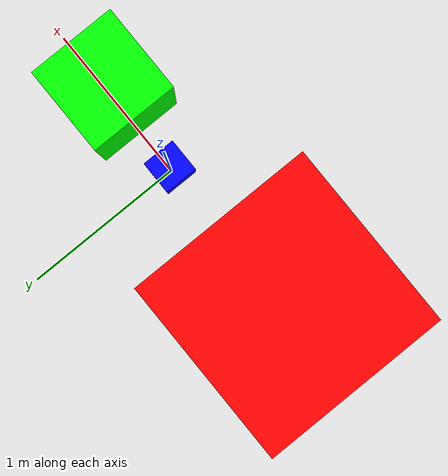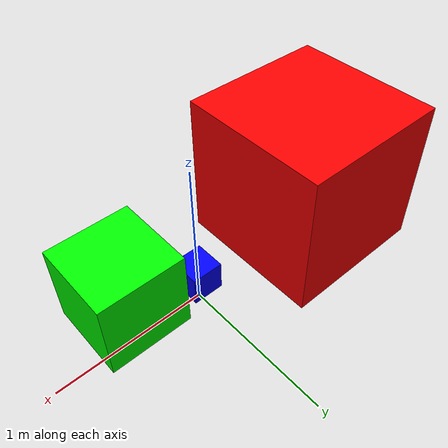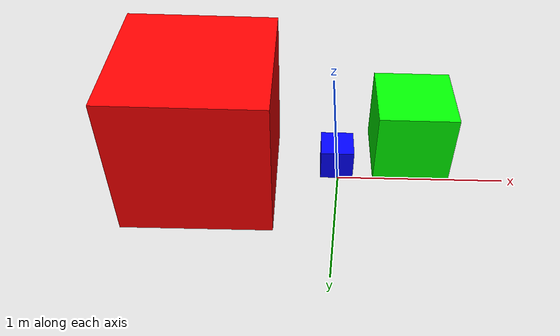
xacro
<?xml version="1.0"?>
<!--
  hello_world.xacro
  A minimal example showing how to use Xacro macros and parameters
  to create simple geometric links in a ROS 2 robot description.
-->

<robot xmlns:xacro="http://www.ros.org/wiki/xacro" name="hello_world_robot">

  <xacro:macro name="cube" params="name size color parent xyz">
    <!-- Define the link -->
    <link name="${name}">
      <visual>
        <geometry>
          <box size="${size} ${size} ${size}"/>
        </geometry>
        <material name="${color}">
          <!-- Simple color presets -->
          <xacro:if value="${color == 'red'}">
            <color rgba="1 0 0 1"/>
          </xacro:if>
          <xacro:if value="${color == 'green'}">
            <color rgba="0 1 0 1"/>
          </xacro:if>
          <xacro:if value="${color == 'blue'}">
            <color rgba="0 0 1 1"/>
          </xacro:if>
        </material>
      </visual>
    </link>

    <!-- Attach via fixed joint -->
    <joint name="joint_${name}" type="fixed">
      <parent link="${parent}"/>
      <child link="${name}"/>
      <origin xyz="${xyz}" rpy="0 0 0"/>
    </joint>
  </xacro:macro>

  <!-- Root link -->
  <link name="base_link"/>

  <!-- Instantiate a few cubes -->
  <xacro:cube name="small_box"  size="0.2" color="blue"  parent="base_link" xyz="0 0 0.2"/>
  <xacro:cube name="medium_box" size="0.5" color="green" parent="base_link" xyz="0.5 0 0.5"/>
  <xacro:cube name="large_box"  size="1" color="red"   parent="base_link" xyz="-0.9 0.0 0.5"/>

</robot>
